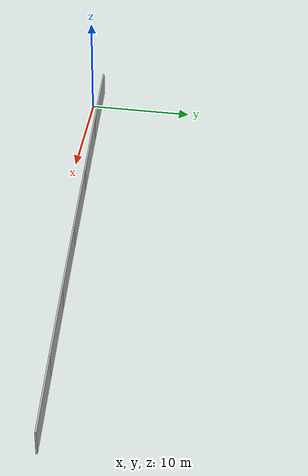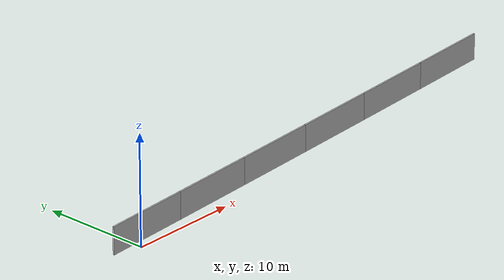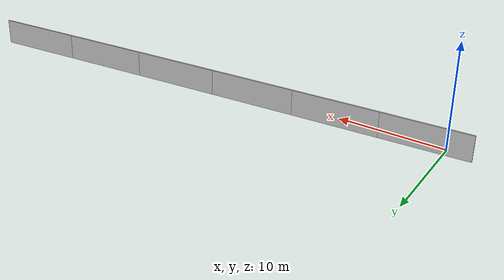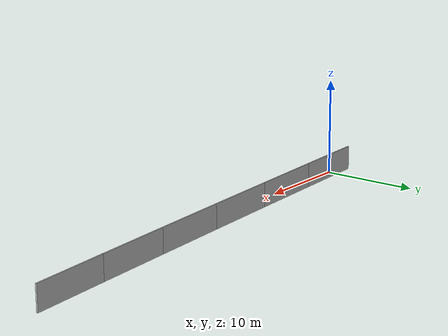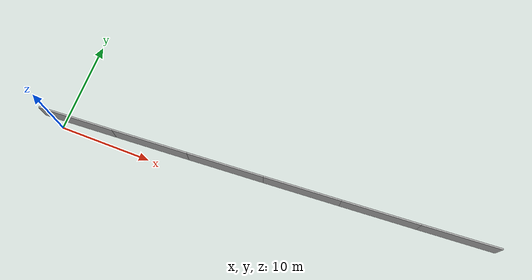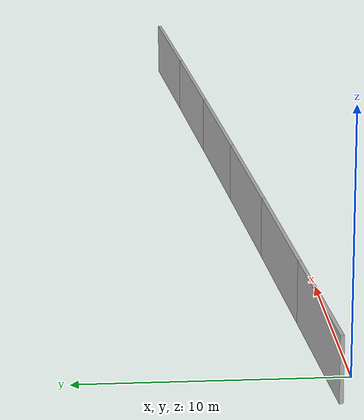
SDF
<?xml version="1.0" ?>
<sdf version="1.6">
  <model name="sps_4802">
    <pose frame="">0 0 0 0 -0 0</pose>
    <static>1</static>
    <self_collide>0</self_collide>
    <allow_auto_disable>0</allow_auto_disable>
    <link name="Wall8950">
      <kinematic>0</kinematic>
      <gravity>1</gravity>
      <self_collide>0</self_collide>
      <collision name="collision">
        <geometry>
          <box>
            <size>8.25136 0.15 2.5</size>
          </box>
        </geometry>
        <pose frame="">0 0 0 0 -0 0</pose>
      </collision>
      <visual name="visual">
        <geometry>
          <box>
            <size>8.25136 0.15 2.5</size>
          </box>
        </geometry>
        <pose frame="">0 0 0 0 -0 0</pose>
        <cast_shadows>1</cast_shadows>
        <transparency>0.0</transparency>
      </visual>
      <pose frame="">1.66314 0.943007 1.25 0 -0 0.055654</pose>
    </link>
    <link name="Wall8951">
      <kinematic>0</kinematic>
      <gravity>1</gravity>
      <self_collide>0</self_collide>
      <collision name="collision">
        <geometry>
          <box>
            <size>8.25192 0.15 2.5</size>
          </box>
        </geometry>
        <pose frame="">0 0 0 0 -0 0</pose>
      </collision>
      <visual name="visual">
        <geometry>
          <box>
            <size>8.25192 0.15 2.5</size>
          </box>
        </geometry>
        <pose frame="">0 0 0 0 -0 0</pose>
        <cast_shadows>1</cast_shadows>
        <transparency>0.0</transparency>
      </visual>
      <pose frame="">9.90145 1.4117 1.25 0 -0 0.0580062</pose>
    </link>
    <link name="Wall8952">
      <kinematic>0</kinematic>
      <gravity>1</gravity>
      <self_collide>0</self_collide>
      <collision name="collision">
        <geometry>
          <box>
            <size>8.25186 0.15 2.5</size>
          </box>
        </geometry>
        <pose frame="">0 0 0 0 -0 0</pose>
      </collision>
      <visual name="visual">
        <geometry>
          <box>
            <size>8.25186 0.15 2.5</size>
          </box>
        </geometry>
        <pose frame="">0 0 0 0 -0 0</pose>
        <cast_shadows>1</cast_shadows>
        <transparency>0.0</transparency>
      </visual>
      <pose frame="">18.1389 1.89989 1.25 0 -0 0.060385</pose>
    </link>
    <link name="Wall8953">
      <kinematic>0</kinematic>
      <gravity>1</gravity>
      <self_collide>0</self_collide>
      <collision name="collision">
        <geometry>
          <box>
            <size>8.25159 0.15 2.5</size>
          </box>
        </geometry>
        <pose frame="">0 0 0 0 -0 0</pose>
      </collision>
      <visual name="visual">
        <geometry>
          <box>
            <size>8.25159 0.15 2.5</size>
          </box>
        </geometry>
        <pose frame="">0 0 0 0 -0 0</pose>
        <cast_shadows>1</cast_shadows>
        <transparency>0.0</transparency>
      </visual>
      <pose frame="">26.375 2.40758 1.25 0 -0 0.0627436</pose>
    </link>
    <link name="Wall8954">
      <kinematic>0</kinematic>
      <gravity>1</gravity>
      <self_collide>0</self_collide>
      <collision name="collision">
        <geometry>
          <box>
            <size>8.25193 0.15 2.5</size>
          </box>
        </geometry>
        <pose frame="">0 0 0 0 -0 0</pose>
      </collision>
      <visual name="visual">
        <geometry>
          <box>
            <size>8.25193 0.15 2.5</size>
          </box>
        </geometry>
        <pose frame="">0 0 0 0 -0 0</pose>
        <cast_shadows>1</cast_shadows>
        <transparency>0.0</transparency>
      </visual>
      <pose frame="">34.6099 2.9348 1.25 0 -0 0.0651276</pose>
    </link>
    <link name="Wall8955">
      <kinematic>0</kinematic>
      <gravity>1</gravity>
      <self_collide>0</self_collide>
      <collision name="collision">
        <geometry>
          <box>
            <size>8.25175 0.15 2.5</size>
          </box>
        </geometry>
        <pose frame="">0 0 0 0 -0 0</pose>
      </collision>
      <visual name="visual">
        <geometry>
          <box>
            <size>8.25175 0.15 2.5</size>
          </box>
        </geometry>
        <pose frame="">0 0 0 0 -0 0</pose>
        <cast_shadows>1</cast_shadows>
        <transparency>0.0</transparency>
      </visual>
      <pose frame="">42.8436 3.48152 1.25 0 -0 0.0674789</pose>
    </link>
  </model>
</sdf>
